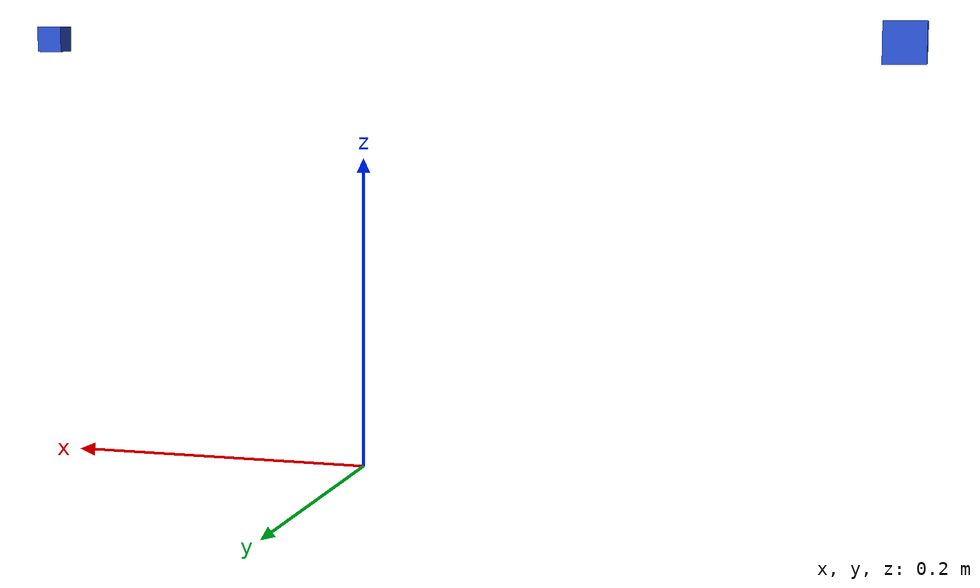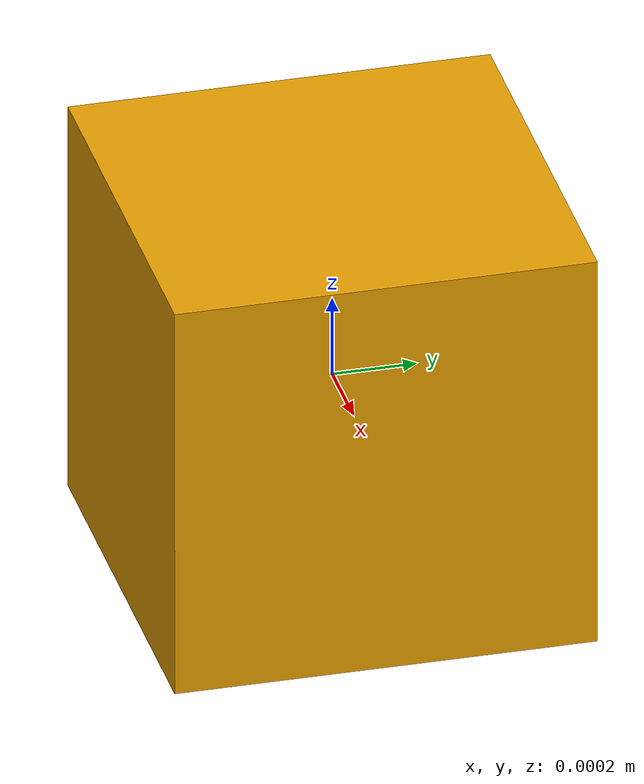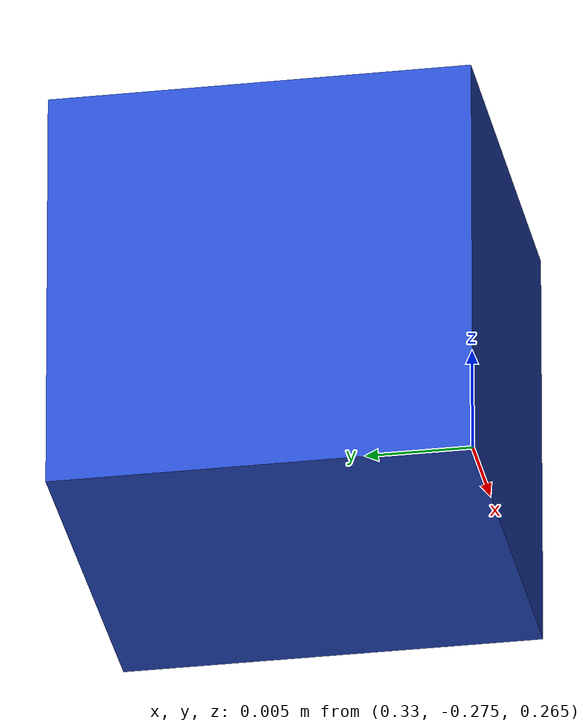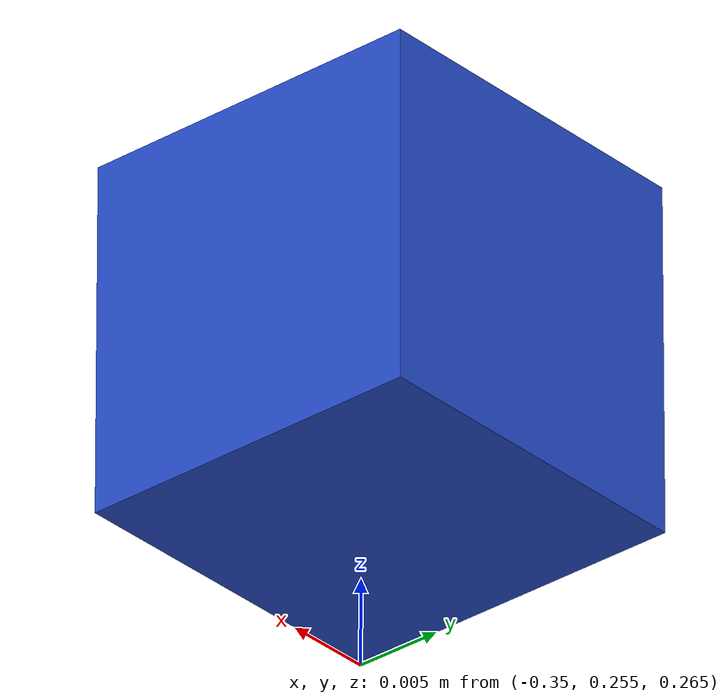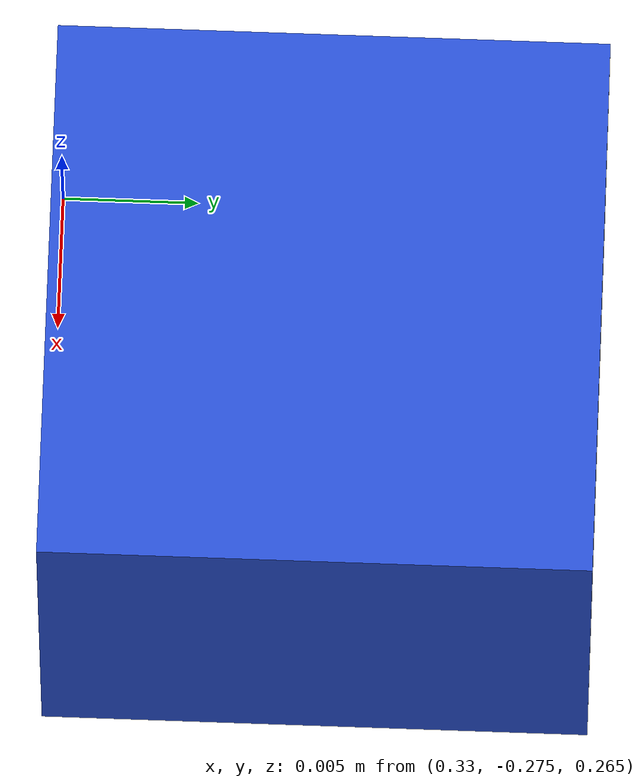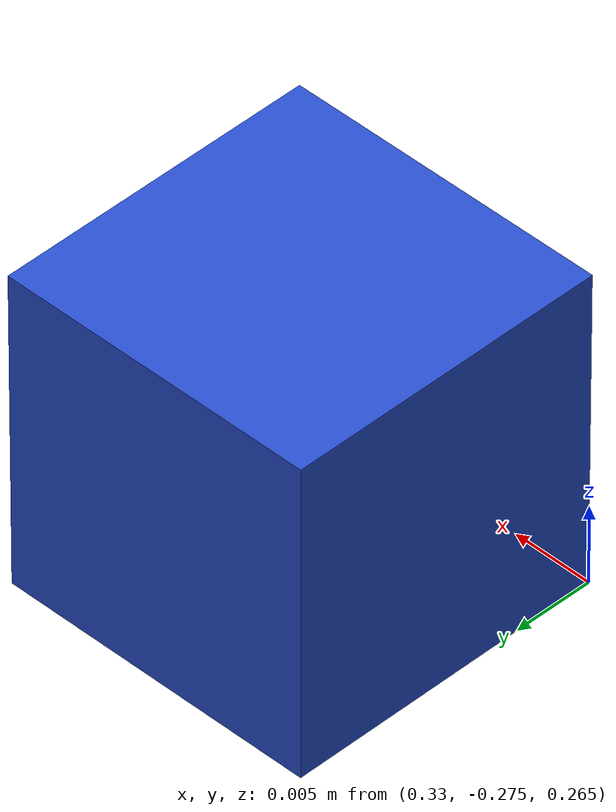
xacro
<?xml version="1.0"?>
<robot name="lujiebot" xmlns:xacro="http://www.ros.org/wiki/xacro">

  <property name="base_length" value="0.68" />
  <property name="base_width" value="0.53" />
  <property name="laser_height" value="0.275" />
  <property name="hokuyo_size" value="0.02" />
  <property name="M_PI" value="3.1415926" />

  <link name="base_footprint">
    <inertial>
      <mass value="0.0001" />
      <origin xyz="0 0 0" />
      <inertia ixx="0.0001" ixy="0.0" ixz="0.0"
          iyy="0.0001" iyz="0.0"
          izz="0.0001" />
    </inertial>
    <visual>
        <origin xyz="0 0 0" rpy="0 0 0" />
        <geometry>
            <box size="0.001 0.001 0.001" />
        </geometry>
    </visual>
  </link>

  <link name="hokuyo_link_front">
    <visual>
      <origin xyz="0 0 0" rpy="0 0 0" />
      <geometry>
        <box size="${hokuyo_size} ${hokuyo_size} ${hokuyo_size}"/>
      </geometry>
      <material name="Blue" />
    </visual>
  </link>

  <joint name="hokuyo_joint_front" type="fixed">
    <origin xyz="${base_length/2}  ${-base_width/2} ${laser_height}" rpy="0 0 ${M_PI/2}" />
    <parent link="base_footprint"/>
    <child link="hokuyo_link_front" />
  </joint>

  <link name="hokuyo_link_back">
    <visual>
      <origin xyz="0 0 0" rpy="0 0 0" />
      <geometry>
        <box size="${hokuyo_size} ${hokuyo_size} ${hokuyo_size}"/>
      </geometry>
      <material name="Blue" />
    </visual>
  </link>

  <joint name="hokuyo_joint_back" type="fixed">
    <origin xyz="${-base_length/2}  ${base_width/2} ${laser_height}" rpy="0 0 ${-M_PI/2}" />
    <parent link="base_footprint"/>
    <child link="hokuyo_link_back" />
  </joint>

</robot>
